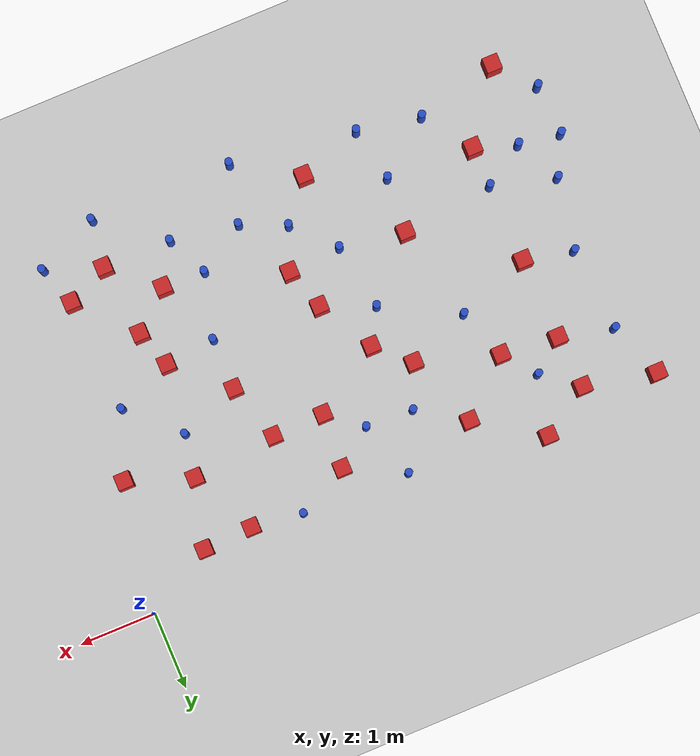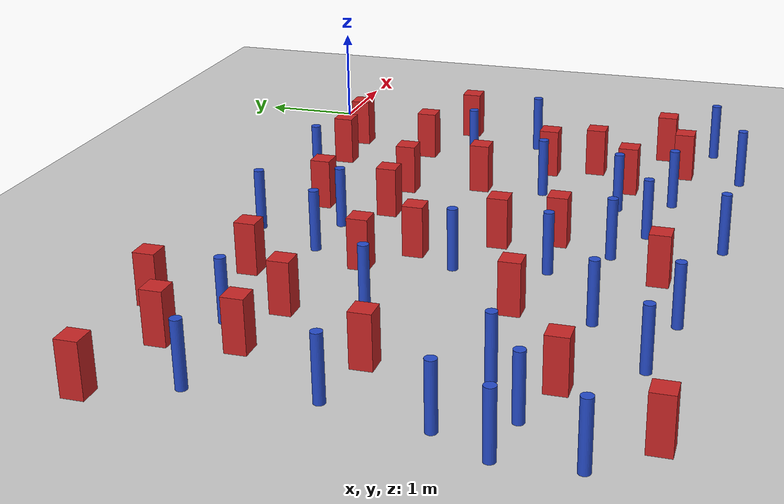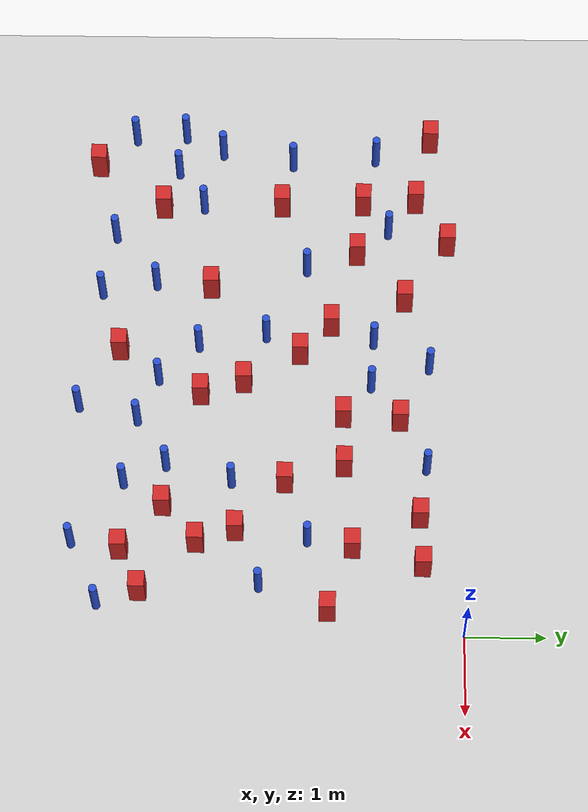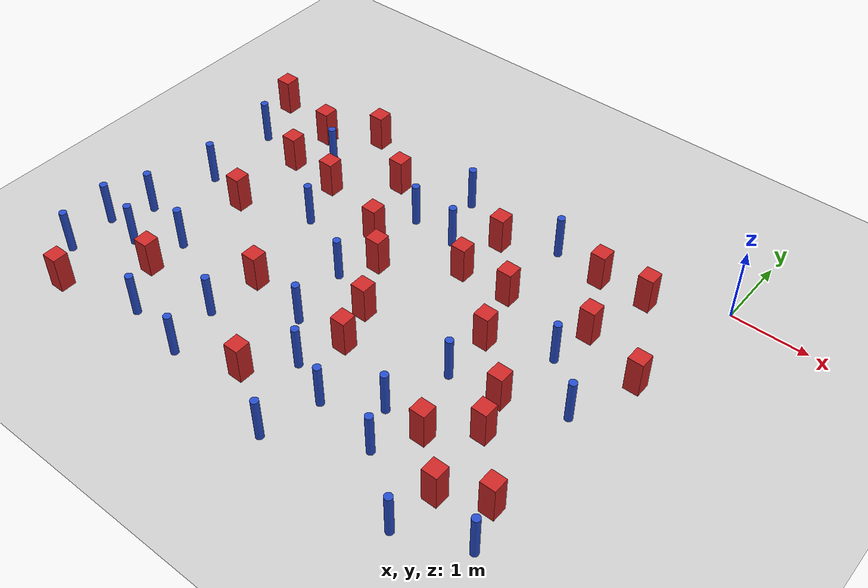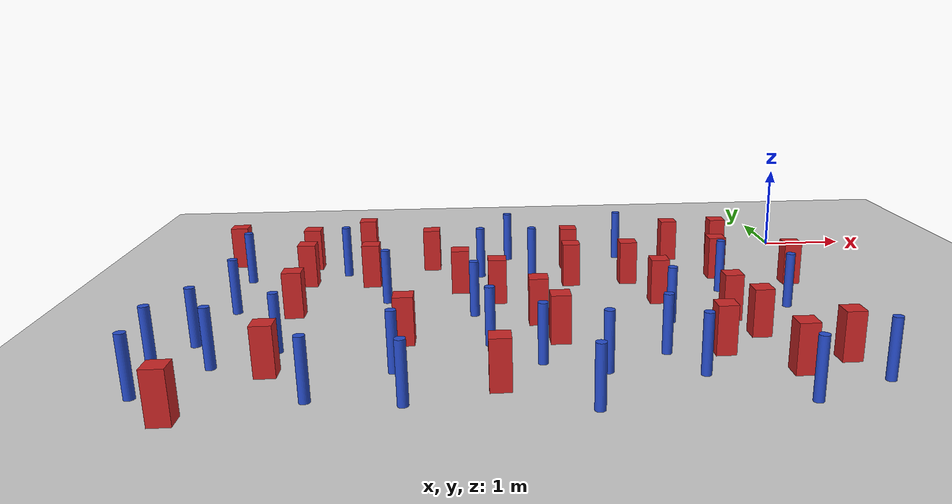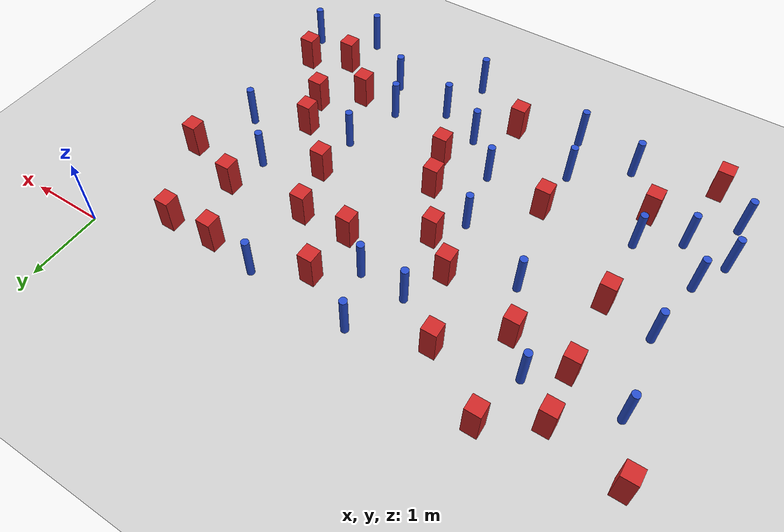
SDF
<sdf version="1.6">
 <world name="default">
  <model name="ground_plane">
   <static>1</static>
   <link name="link">
    <collision name="collision">
     <geometry><plane><normal>0 0 1</normal><size>100 100</size></plane></geometry>
     <surface><friction><ode><mu>100</mu><mu2>50</mu2></ode></friction></surface>
    </collision>
    <visual name="visual">
     <cast_shadows>0</cast_shadows>
     <geometry><plane><normal>0 0 1</normal><size>100 100</size></plane></geometry>
     <material>
      <ambient>1.0 1.0 1.0 1.0</ambient>
      <diffuse>0.8 0.8 0.8 1.0</diffuse>
      <specular>0.01 0.01 0.01 1.000000</specular>
     </material>
    </visual>
   </link>
  </model>
  <model name="square_post_obstacle2">
   <static>true</static>
   <pose>-2.88461139932 -1.47978508925 -4.36207812815e-07 3.75137919937e-06 9.77721102514e-07 2.47381364184e-05</pose>
   <link name="link">
    <pose>0 0 0.25 0 -0 0</pose>
    <inertial>
     <mass>100</mass>
     <inertia>
      <ixx>0.166667</ixx>
      <ixy>0</ixy>
      <ixz>0</ixz>
      <iyy>0.166667</iyy>
      <iyz>0</iyz>
      <izz>0.166667</izz>
     </inertia>
    </inertial>
    <collision name="collision"><geometry><box><size>.2 .2 .5</size></box></geometry></collision>
    <visual name="visual">
     <geometry><box><size>.2 .2 .5</size></box></geometry>
     <material>
      <script><name>Gazebo/Red</name><uri>file://media/materials/scripts/gazebo.material</uri></script>
     </material>
    </visual>
   </link>
  </model>
  <model name="square_post_obstacle6">
   <static>true</static>
   <pose>-2.84316023539 -0.767534176309 -4.36207812815e-07 3.75137919937e-06 9.77721102514e-07 2.47381364184e-05</pose>
   <link name="link">
    <pose>0 0 0.25 0 -0 0</pose>
    <inertial>
     <mass>100</mass>
     <inertia>
      <ixx>0.166667</ixx>
      <ixy>0</ixy>
      <ixz>0</ixz>
      <iyy>0.166667</iyy>
      <iyz>0</iyz>
      <izz>0.166667</izz>
     </inertia>
    </inertial>
    <collision name="collision"><geometry><box><size>.2 .2 .5</size></box></geometry></collision>
    <visual name="visual">
     <geometry><box><size>.2 .2 .5</size></box></geometry>
     <material>
      <script><name>Gazebo/Red</name><uri>file://media/materials/scripts/gazebo.material</uri></script>
     </material>
    </visual>
   </link>
  </model>
  <model name="square_post_obstacle8">
   <static>true</static>
   <pose>-4.70309070849 -3.17879150348 -4.36207812815e-07 3.75137919937e-06 9.77721102514e-07 2.47381364184e-05</pose>
   <link name="link">
    <pose>0 0 0.25 0 -0 0</pose>
    <inertial>
     <mass>100</mass>
     <inertia>
      <ixx>0.166667</ixx>
      <ixy>0</ixy>
      <ixz>0</ixz>
      <iyy>0.166667</iyy>
      <iyz>0</iyz>
      <izz>0.166667</izz>
     </inertia>
    </inertial>
    <collision name="collision"><geometry><box><size>.2 .2 .5</size></box></geometry></collision>
    <visual name="visual">
     <geometry><box><size>.2 .2 .5</size></box></geometry>
     <material>
      <script><name>Gazebo/Red</name><uri>file://media/materials/scripts/gazebo.material</uri></script>
     </material>
    </visual>
   </link>
  </model>
  <model name="pole_obstacle16">
   <static>true</static>
   <pose>-6.55094301523 -2.15541498875 -3.09024884793e-07 -7.19054271912e-07 -2.11315075144e-07 -1.93935509269e-07</pose>
   <link name="link">
    <pose>0 0 0.3 0 -0 0</pose>
    <inertial>
     <mass>1</mass>
     <inertia><ixx>0.145833</ixx><ixy>0</ixy><ixz>0</ixz><iyy>0.145833</iyy><iyz>0</iyz><izz>0.125</izz></inertia>
    </inertial>
    <collision name="collision">
     <geometry><cylinder><radius>0.05</radius><length>.6</length></cylinder></geometry>
    </collision>
    <visual name="visual">
     <geometry><cylinder><radius>0.05</radius><length>.6</length></cylinder></geometry>
     <material>
      <script><name>Gazebo/Blue</name><uri>file://media/materials/scripts/gazebo.material</uri></script>
     </material>
    </visual>
   </link>
  </model>
  <model name="square_post_obstacle26">
   <static>true</static>
   <pose>-3.80524596658 -4.31462572577 -4.36207812815e-07 3.75137919937e-06 9.77721102514e-07 2.47381364184e-05</pose>
   <link name="link">
    <pose>0 0 0.25 0 -0 0</pose>
    <inertial>
     <mass>100</mass>
     <inertia>
      <ixx>0.166667</ixx>
      <ixy>0</ixy>
      <ixz>0</ixz>
      <iyy>0.166667</iyy>
      <iyz>0</iyz>
      <izz>0.166667</izz>
     </inertia>
    </inertial>
    <collision name="collision"><geometry><box><size>.2 .2 .5</size></box></geometry></collision>
    <visual name="visual">
     <geometry><box><size>.2 .2 .5</size></box></geometry>
     <material>
      <script><name>Gazebo/Red</name><uri>file://media/materials/scripts/gazebo.material</uri></script>
     </material>
    </visual>
   </link>
  </model>
  <model name="square_post_obstacle27">
   <static>true</static>
   <pose>-0.881966383445 -0.498350756091 -4.36207812815e-07 3.75137919937e-06 9.77721102514e-07 2.47381364184e-05</pose>
   <link name="link">
    <pose>0 0 0.25 0 -0 0</pose>
    <inertial>
     <mass>100</mass>
     <inertia>
      <ixx>0.166667</ixx>
      <ixy>0</ixy>
      <ixz>0</ixz>
      <iyy>0.166667</iyy>
      <iyz>0</iyz>
      <izz>0.166667</izz>
     </inertia>
    </inertial>
    <collision name="collision"><geometry><box><size>.2 .2 .5</size></box></geometry></collision>
    <visual name="visual">
     <geometry><box><size>.2 .2 .5</size></box></geometry>
     <material>
      <script><name>Gazebo/Red</name><uri>file://media/materials/scripts/gazebo.material</uri></script>
     </material>
    </visual>
   </link>
  </model>
  <model name="pole_obstacle23">
   <static>true</static>
   <pose>-5.44687800554 -4.43225076256 -3.09024884793e-07 -7.19054271911e-07 -2.1131507516e-07 -1.93935509277e-07</pose>
   <link name="link">
    <pose>0 0 0.3 0 -0 0</pose>
    <inertial>
     <mass>1</mass>
     <inertia><ixx>0.145833</ixx><ixy>0</ixy><ixz>0</ixz><iyy>0.145833</iyy><iyz>0</iyz><izz>0.125</izz></inertia>
    </inertial>
    <collision name="collision">
     <geometry><cylinder><radius>0.05</radius><length>.6</length></cylinder></geometry>
    </collision>
    <visual name="visual">
     <geometry><cylinder><radius>0.05</radius><length>.6</length></cylinder></geometry>
     <material>
      <script><name>Gazebo/Blue</name><uri>file://media/materials/scripts/gazebo.material</uri></script>
     </material>
    </visual>
   </link>
  </model>
  <model name="pole_obstacle27">
   <static>true</static>
   <pose>-2.18520740546 -0.436808155744 -3.09024884793e-07 -7.19054271912e-07 -2.1131507512e-07 -1.93935509259e-07</pose>
   <link name="link">
    <pose>0 0 0.3 0 -0 0</pose>
    <inertial>
     <mass>1</mass>
     <inertia><ixx>0.145833</ixx><ixy>0</ixy><ixz>0</ixz><iyy>0.145833</iyy><iyz>0</iyz><izz>0.125</izz></inertia>
    </inertial>
    <collision name="collision">
     <geometry><cylinder><radius>0.05</radius><length>.6</length></cylinder></geometry>
    </collision>
    <visual name="visual">
     <geometry><cylinder><radius>0.05</radius><length>.6</length></cylinder></geometry>
     <material>
      <script><name>Gazebo/Blue</name><uri>file://media/materials/scripts/gazebo.material</uri></script>
     </material>
    </visual>
   </link>
  </model>
  <model name="pole_obstacle28">
   <static>true</static>
   <pose>-1.1608987518 -4.8187572536 -3.09024884793e-07 -7.19054271912e-07 -2.11315075134e-07 -1.93935509265e-07</pose>
   <link name="link">
    <pose>0 0 0.3 0 -0 0</pose>
    <inertial>
     <mass>1</mass>
     <inertia><ixx>0.145833</ixx><ixy>0</ixy><ixz>0</ixz><iyy>0.145833</iyy><iyz>0</iyz><izz>0.125</izz></inertia>
    </inertial>
    <collision name="collision">
     <geometry><cylinder><radius>0.05</radius><length>.6</length></cylinder></geometry>
    </collision>
    <visual name="visual">
     <geometry><cylinder><radius>0.05</radius><length>.6</length></cylinder></geometry>
     <material>
      <script><name>Gazebo/Blue</name><uri>file://media/materials/scripts/gazebo.material</uri></script>
     </material>
    </visual>
   </link>
  </model>
  <model name="square_post_obstacle35">
   <static>true</static>
   <pose>-5.88308273688 -3.82648698249 -4.36207812815e-07 3.75137919937e-06 9.77721102514e-07 2.47381364184e-05</pose>
   <link name="link">
    <pose>0 0 0.25 0 -0 0</pose>
    <inertial>
     <mass>100</mass>
     <inertia>
      <ixx>0.166667</ixx>
      <ixy>0</ixy>
      <ixz>0</ixz>
      <iyy>0.166667</iyy>
      <iyz>0</iyz>
      <izz>0.166667</izz>
     </inertia>
    </inertial>
    <collision name="collision"><geometry><box><size>.2 .2 .5</size></box></geometry></collision>
    <visual name="visual">
     <geometry><box><size>.2 .2 .5</size></box></geometry>
     <material>
      <script><name>Gazebo/Red</name><uri>file://media/materials/scripts/gazebo.material</uri></script>
     </material>
    </visual>
   </link>
  </model>
  <model name="pole_obstacle34">
   <static>true</static>
   <pose>-4.62254869981 -4.57685356982 -3.09024884793e-07 -7.19054271911e-07 -2.1131507516e-07 -1.93935509277e-07</pose>
   <link name="link">
    <pose>0 0 0.3 0 -0 0</pose>
    <inertial>
     <mass>1</mass>
     <inertia><ixx>0.145833</ixx><ixy>0</ixy><ixz>0</ixz><iyy>0.145833</iyy><iyz>0</iyz><izz>0.125</izz></inertia>
    </inertial>
    <collision name="collision">
     <geometry><cylinder><radius>0.05</radius><length>.6</length></cylinder></geometry>
    </collision>
    <visual name="visual">
     <geometry><cylinder><radius>0.05</radius><length>.6</length></cylinder></geometry>
     <material>
      <script><name>Gazebo/Blue</name><uri>file://media/materials/scripts/gazebo.material</uri></script>
     </material>
    </visual>
   </link>
  </model>
  <model name="pole_obstacle45">
   <static>true</static>
   <pose>-3.86966983526 -3.31612171893 -3.09024884793e-07 -7.19054271912e-07 -2.11315075144e-07 -1.93935509271e-07</pose>
   <link name="link">
    <pose>0 0 0.3 0 -0 0</pose>
    <inertial>
     <mass>1</mass>
     <inertia><ixx>0.145833</ixx><ixy>0</ixy><ixz>0</ixz><iyy>0.145833</iyy><iyz>0</iyz><izz>0.125</izz></inertia>
    </inertial>
    <collision name="collision">
     <geometry><cylinder><radius>0.05</radius><length>.6</length></cylinder></geometry>
    </collision>
    <visual name="visual">
     <geometry><cylinder><radius>0.05</radius><length>.6</length></cylinder></geometry>
     <material>
      <script><name>Gazebo/Blue</name><uri>file://media/materials/scripts/gazebo.material</uri></script>
     </material>
    </visual>
   </link>
  </model>
  <model name="square_post_obstacle42">
   <static>true</static>
   <pose>-3.18379272743 -3.2729266285 -4.36207812815e-07 3.75137919937e-06 9.77721102514e-07 2.47381364184e-05</pose>
   <link name="link">
    <pose>0 0 0.25 0 -0 0</pose>
    <inertial>
     <mass>100</mass>
     <inertia>
      <ixx>0.166667</ixx>
      <ixy>0</ixy>
      <ixz>0</ixz>
      <iyy>0.166667</iyy>
      <iyz>0</iyz>
      <izz>0.166667</izz>
     </inertia>
    </inertial>
    <collision name="collision"><geometry><box><size>.2 .2 .5</size></box></geometry></collision>
    <visual name="visual">
     <geometry><box><size>.2 .2 .5</size></box></geometry>
     <material>
      <script><name>Gazebo/Red</name><uri>file://media/materials/scripts/gazebo.material</uri></script>
     </material>
    </visual>
   </link>
  </model>
  <model name="square_post_obstacle46">
   <static>true</static>
   <pose>-0.534580479766 -3.96690956451 -4.36207812815e-07 3.75137919937e-06 9.77721102514e-07 2.47381364184e-05</pose>
   <link name="link">
    <pose>0 0 0.25 0 -0 0</pose>
    <inertial>
     <mass>100</mass>
     <inertia>
      <ixx>0.166667</ixx>
      <ixy>0</ixy>
      <ixz>0</ixz>
      <iyy>0.166667</iyy>
      <iyz>0</iyz>
      <izz>0.166667</izz>
     </inertia>
    </inertial>
    <collision name="collision"><geometry><box><size>.2 .2 .5</size></box></geometry></collision>
    <visual name="visual">
     <geometry><box><size>.2 .2 .5</size></box></geometry>
     <material>
      <script><name>Gazebo/Red</name><uri>file://media/materials/scripts/gazebo.material</uri></script>
     </material>
    </visual>
   </link>
  </model>
  <model name="pole_obstacle46">
   <static>true</static>
   <pose>-4.75628940121 -3.88596519779 -3.09024884793e-07 -7.19054271912e-07 -2.11315075144e-07 -1.93935509269e-07</pose>
   <link name="link">
    <pose>0 0 0.3 0 -0 0</pose>
    <inertial>
     <mass>1</mass>
     <inertia><ixx>0.145833</ixx><ixy>0</ixy><ixz>0</ixz><iyy>0.145833</iyy><iyz>0</iyz><izz>0.125</izz></inertia>
    </inertial>
    <collision name="collision">
     <geometry><cylinder><radius>0.05</radius><length>.6</length></cylinder></geometry>
    </collision>
    <visual name="visual">
     <geometry><cylinder><radius>0.05</radius><length>.6</length></cylinder></geometry>
     <material>
      <script><name>Gazebo/Blue</name><uri>file://media/materials/scripts/gazebo.material</uri></script>
     </material>
    </visual>
   </link>
  </model>
  <model name="square_post_obstacle51">
   <static>true</static>
   <pose>-1.17109834262 -3.28241314627 -4.36207812815e-07 3.75137919937e-06 9.77721102514e-07 2.47381364184e-05</pose>
   <link name="link">
    <pose>0 0 0.25 0 -0 0</pose>
    <inertial>
     <mass>100</mass>
     <inertia>
      <ixx>0.166667</ixx>
      <ixy>0</ixy>
      <ixz>0</ixz>
      <iyy>0.166667</iyy>
      <iyz>0</iyz>
      <izz>0.166667</izz>
     </inertia>
    </inertial>
    <collision name="collision"><geometry><box><size>.2 .2 .5</size></box></geometry></collision>
    <visual name="visual">
     <geometry><box><size>.2 .2 .5</size></box></geometry>
     <material>
      <script><name>Gazebo/Red</name><uri>file://media/materials/scripts/gazebo.material</uri></script>
     </material>
    </visual>
   </link>
  </model>
  <model name="pole_obstacle55">
   <static>true</static>
   <pose>-1.20881541404 -1.91134777488 -3.09024884793e-07 -7.19054271912e-07 -2.1131507513e-07 -1.93935509263e-07</pose>
   <link name="link">
    <pose>0 0 0.3 0 -0 0</pose>
    <inertial>
     <mass>1</mass>
     <inertia><ixx>0.145833</ixx><ixy>0</ixy><ixz>0</ixz><iyy>0.145833</iyy><iyz>0</iyz><izz>0.125</izz></inertia>
    </inertial>
    <collision name="collision">
     <geometry><cylinder><radius>0.05</radius><length>.6</length></cylinder></geometry>
    </collision>
    <visual name="visual">
     <geometry><cylinder><radius>0.05</radius><length>.6</length></cylinder></geometry>
     <material>
      <script><name>Gazebo/Blue</name><uri>file://media/materials/scripts/gazebo.material</uri></script>
     </material>
    </visual>
   </link>
  </model>
  <model name="pole_obstacle57">
   <static>true</static>
   <pose>-6.92636249057 -4.22519619864 -3.09024884793e-07 -7.19054271911e-07 -2.1131507516e-07 -1.93935509277e-07</pose>
   <link name="link">
    <pose>0 0 0.3 0 -0 0</pose>
    <inertial>
     <mass>1</mass>
     <inertia><ixx>0.145833</ixx><ixy>0</ixy><ixz>0</ixz><iyy>0.145833</iyy><iyz>0</iyz><izz>0.125</izz></inertia>
    </inertial>
    <collision name="collision">
     <geometry><cylinder><radius>0.05</radius><length>.6</length></cylinder></geometry>
    </collision>
    <visual name="visual">
     <geometry><cylinder><radius>0.05</radius><length>.6</length></cylinder></geometry>
     <material>
      <script><name>Gazebo/Blue</name><uri>file://media/materials/scripts/gazebo.material</uri></script>
     </material>
    </visual>
   </link>
  </model>
  <model name="pole_obstacle63">
   <static>true</static>
   <pose>-0.360448310892 -4.47291807117 -3.09024884793e-07 -7.19054271912e-07 -2.1131507513e-07 -1.93935509262e-07</pose>
   <link name="link">
    <pose>0 0 0.3 0 -0 0</pose>
    <inertial>
     <mass>1</mass>
     <inertia><ixx>0.145833</ixx><ixy>0</ixy><ixz>0</ixz><iyy>0.145833</iyy><iyz>0</iyz><izz>0.125</izz></inertia>
    </inertial>
    <collision name="collision">
     <geometry><cylinder><radius>0.05</radius><length>.6</length></cylinder></geometry>
    </collision>
    <visual name="visual">
     <geometry><cylinder><radius>0.05</radius><length>.6</length></cylinder></geometry>
     <material>
      <script><name>Gazebo/Blue</name><uri>file://media/materials/scripts/gazebo.material</uri></script>
     </material>
    </visual>
   </link>
  </model>
  <model name="pole_obstacle69">
   <static>true</static>
   <pose>-4.97867674653 -1.95685073066 -3.09024884793e-07 -7.19054271912e-07 -2.11315075115e-07 -1.93935509255e-07</pose>
   <link name="link">
    <pose>0 0 0.3 0 -0 0</pose>
    <inertial>
     <mass>1</mass>
     <inertia><ixx>0.145833</ixx><ixy>0</ixy><ixz>0</ixz><iyy>0.145833</iyy><iyz>0</iyz><izz>0.125</izz></inertia>
    </inertial>
    <collision name="collision">
     <geometry><cylinder><radius>0.05</radius><length>.6</length></cylinder></geometry>
    </collision>
    <visual name="visual">
     <geometry><cylinder><radius>0.05</radius><length>.6</length></cylinder></geometry>
     <material>
      <script><name>Gazebo/Blue</name><uri>file://media/materials/scripts/gazebo.material</uri></script>
     </material>
    </visual>
   </link>
  </model>
  <model name="pole_obstacle84">
   <static>true</static>
   <pose>-4.01639398106 -2.46331447225 -3.09024884793e-07 -7.19054271912e-07 -2.11315075143e-07 -1.93935509269e-07</pose>
   <link name="link">
    <pose>0 0 0.3 0 -0 0</pose>
    <inertial>
     <mass>1</mass>
     <inertia><ixx>0.145833</ixx><ixy>0</ixy><ixz>0</ixz><iyy>0.145833</iyy><iyz>0</iyz><izz>0.125</izz></inertia>
    </inertial>
    <collision name="collision">
     <geometry><cylinder><radius>0.05</radius><length>.6</length></cylinder></geometry>
    </collision>
    <visual name="visual">
     <geometry><cylinder><radius>0.05</radius><length>.6</length></cylinder></geometry>
     <material>
      <script><name>Gazebo/Blue</name><uri>file://media/materials/scripts/gazebo.material</uri></script>
     </material>
    </visual>
   </link>
  </model>
  <model name="pole_obstacle94">
   <static>true</static>
   <pose>-3.39454995424 -3.81226874878 -3.09024884793e-07 -7.19054271912e-07 -2.11315075144e-07 -1.93935509271e-07</pose>
   <link name="link">
    <pose>0 0 0.3 0 -0 0</pose>
    <inertial>
     <mass>1</mass>
     <inertia><ixx>0.145833</ixx><ixy>0</ixy><ixz>0</ixz><iyy>0.145833</iyy><iyz>0</iyz><izz>0.125</izz></inertia>
    </inertial>
    <collision name="collision">
     <geometry><cylinder><radius>0.05</radius><length>.6</length></cylinder></geometry>
    </collision>
    <visual name="visual">
     <geometry><cylinder><radius>0.05</radius><length>.6</length></cylinder></geometry>
     <material>
      <script><name>Gazebo/Blue</name><uri>file://media/materials/scripts/gazebo.material</uri></script>
     </material>
    </visual>
   </link>
  </model>
  <model name="pole_obstacle104">
   <static>true</static>
   <pose>-1.95864846321 -4.20368578143 -3.09024884793e-07 -7.19054271912e-07 -2.1131507513e-07 -1.93935509262e-07</pose>
   <link name="link">
    <pose>0 0 0.3 0 -0 0</pose>
    <inertial>
     <mass>1</mass>
     <inertia><ixx>0.145833</ixx><ixy>0</ixy><ixz>0</ixz><iyy>0.145833</iyy><iyz>0</iyz><izz>0.125</izz></inertia>
    </inertial>
    <collision name="collision">
     <geometry><cylinder><radius>0.05</radius><length>.6</length></cylinder></geometry>
    </collision>
    <visual name="visual">
     <geometry><cylinder><radius>0.05</radius><length>.6</length></cylinder></geometry>
     <material>
      <script><name>Gazebo/Blue</name><uri>file://media/materials/scripts/gazebo.material</uri></script>
     </material>
    </visual>
   </link>
  </model>
  <model name="square_post_obstacle92">
   <static>true</static>
   <pose>-5.91472589866 -2.28969219752 -4.36207812815e-07 3.75137919937e-06 9.77721102514e-07 2.47381364184e-05</pose>
   <link name="link">
    <pose>0 0 0.25 0 -0 0</pose>
    <inertial>
     <mass>100</mass>
     <inertia>
      <ixx>0.166667</ixx>
      <ixy>0</ixy>
      <ixz>0</ixz>
      <iyy>0.166667</iyy>
      <iyz>0</iyz>
      <izz>0.166667</izz>
     </inertia>
    </inertial>
    <collision name="collision"><geometry><box><size>.2 .2 .5</size></box></geometry></collision>
    <visual name="visual">
     <geometry><box><size>.2 .2 .5</size></box></geometry>
     <material>
      <script><name>Gazebo/Red</name><uri>file://media/materials/scripts/gazebo.material</uri></script>
     </material>
    </visual>
   </link>
  </model>
  <model name="square_post_obstacle93">
   <static>true</static>
   <pose>-4.53040163279 -0.705103822114 -4.36207812815e-07 3.75137919937e-06 9.77721102514e-07 2.47381364184e-05</pose>
   <link name="link">
    <pose>0 0 0.25 0 -0 0</pose>
    <inertial>
     <mass>100</mass>
     <inertia>
      <ixx>0.166667</ixx>
      <ixy>0</ixy>
      <ixz>0</ixz>
      <iyy>0.166667</iyy>
      <iyz>0</iyz>
      <izz>0.166667</izz>
     </inertia>
    </inertial>
    <collision name="collision"><geometry><box><size>.2 .2 .5</size></box></geometry></collision>
    <visual name="visual">
     <geometry><box><size>.2 .2 .5</size></box></geometry>
     <material>
      <script><name>Gazebo/Red</name><uri>file://media/materials/scripts/gazebo.material</uri></script>
     </material>
    </visual>
   </link>
  </model>
  <model name="square_post_obstacle98">
   <static>true</static>
   <pose>-0.288676449657 -1.65964958947 -4.36207812815e-07 3.75137919937e-06 9.77721102514e-07 2.47381364184e-05</pose>
   <link name="link">
    <pose>0 0 0.25 0 -0 0</pose>
    <inertial>
     <mass>100</mass>
     <inertia>
      <ixx>0.166667</ixx>
      <ixy>0</ixy>
      <ixz>0</ixz>
      <iyy>0.166667</iyy>
      <iyz>0</iyz>
      <izz>0.166667</izz>
     </inertia>
    </inertial>
    <collision name="collision"><geometry><box><size>.2 .2 .5</size></box></geometry></collision>
    <visual name="visual">
     <geometry><box><size>.2 .2 .5</size></box></geometry>
     <material>
      <script><name>Gazebo/Red</name><uri>file://media/materials/scripts/gazebo.material</uri></script>
     </material>
    </visual>
   </link>
  </model>
  <model name="pole_obstacle114">
   <static>true</static>
   <pose>-5.89491675135 -3.30587381996 -3.09024884793e-07 -7.19054271912e-07 -2.11315075144e-07 -1.93935509269e-07</pose>
   <link name="link">
    <pose>0 0 0.3 0 -0 0</pose>
    <inertial>
     <mass>1</mass>
     <inertia><ixx>0.145833</ixx><ixy>0</ixy><ixz>0</ixz><iyy>0.145833</iyy><iyz>0</iyz><izz>0.125</izz></inertia>
    </inertial>
    <collision name="collision">
     <geometry><cylinder><radius>0.05</radius><length>.6</length></cylinder></geometry>
    </collision>
    <visual name="visual">
     <geometry><cylinder><radius>0.05</radius><length>.6</length></cylinder></geometry>
     <material>
      <script><name>Gazebo/Blue</name><uri>file://media/materials/scripts/gazebo.material</uri></script>
     </material>
    </visual>
   </link>
  </model>
  <model name="square_post_obstacle104">
   <static>true</static>
   <pose>-1.33190130096 -2.80029335036 -4.36207812815e-07 3.75137919937e-06 9.77721102514e-07 2.47381364184e-05</pose>
   <link name="link">
    <pose>0 0 0.25 0 -0 0</pose>
    <inertial>
     <mass>100</mass>
     <inertia>
      <ixx>0.166667</ixx>
      <ixy>0</ixy>
      <ixz>0</ixz>
      <iyy>0.166667</iyy>
      <iyz>0</iyz>
      <izz>0.166667</izz>
     </inertia>
    </inertial>
    <collision name="collision"><geometry><box><size>.2 .2 .5</size></box></geometry></collision>
    <visual name="visual">
     <geometry><box><size>.2 .2 .5</size></box></geometry>
     <material>
      <script><name>Gazebo/Red</name><uri>file://media/materials/scripts/gazebo.material</uri></script>
     </material>
    </visual>
   </link>
  </model>
  <model name="pole_obstacle124">
   <static>true</static>
   <pose>-6.4221404115 -3.64556877871 -3.09024884793e-07 -7.19054271912e-07 -2.11315075144e-07 -1.93935509269e-07</pose>
   <link name="link">
    <pose>0 0 0.3 0 -0 0</pose>
    <inertial>
     <mass>1</mass>
     <inertia><ixx>0.145833</ixx><ixy>0</ixy><ixz>0</ixz><iyy>0.145833</iyy><iyz>0</iyz><izz>0.125</izz></inertia>
    </inertial>
    <collision name="collision">
     <geometry><cylinder><radius>0.05</radius><length>.6</length></cylinder></geometry>
    </collision>
    <visual name="visual">
     <geometry><cylinder><radius>0.05</radius><length>.6</length></cylinder></geometry>
     <material>
      <script><name>Gazebo/Blue</name><uri>file://media/materials/scripts/gazebo.material</uri></script>
     </material>
    </visual>
   </link>
  </model>
  <model name="pole_obstacle131">
   <static>true</static>
   <pose>-3.31840604903 -1.12851653719 -3.09024884793e-07 -7.19054271912e-07 -2.11315075122e-07 -1.93935509259e-07</pose>
   <link name="link">
    <pose>0 0 0.3 0 -0 0</pose>
    <inertial>
     <mass>1</mass>
     <inertia><ixx>0.145833</ixx><ixy>0</ixy><ixz>0</ixz><iyy>0.145833</iyy><iyz>0</iyz><izz>0.125</izz></inertia>
    </inertial>
    <collision name="collision">
     <geometry><cylinder><radius>0.05</radius><length>.6</length></cylinder></geometry>
    </collision>
    <visual name="visual">
     <geometry><cylinder><radius>0.05</radius><length>.6</length></cylinder></geometry>
     <material>
      <script><name>Gazebo/Blue</name><uri>file://media/materials/scripts/gazebo.material</uri></script>
     </material>
    </visual>
   </link>
  </model>
  <model name="square_post_obstacle117">
   <static>true</static>
   <pose>-6.50341501556 -4.68874881 -4.36207812815e-07 3.75137919937e-06 9.77721102514e-07 2.47381364184e-05</pose>
   <link name="link">
    <pose>0 0 0.25 0 -0 0</pose>
    <inertial>
     <mass>100</mass>
     <inertia>
      <ixx>0.166667</ixx>
      <ixy>0</ixy>
      <ixz>0</ixz>
      <iyy>0.166667</iyy>
      <iyz>0</iyz>
      <izz>0.166667</izz>
     </inertia>
    </inertial>
    <collision name="collision"><geometry><box><size>.2 .2 .5</size></box></geometry></collision>
    <visual name="visual">
     <geometry><box><size>.2 .2 .5</size></box></geometry>
     <material>
      <script><name>Gazebo/Red</name><uri>file://media/materials/scripts/gazebo.material</uri></script>
     </material>
    </visual>
   </link>
  </model>
  <model name="square_post_obstacle121">
   <static>true</static>
   <pose>-4.17175961003 -1.63776358415 -4.36207812815e-07 3.75137919937e-06 9.77721102514e-07 2.47381364184e-05</pose>
   <link name="link">
    <pose>0 0 0.25 0 -0 0</pose>
    <inertial>
     <mass>100</mass>
     <inertia>
      <ixx>0.166667</ixx>
      <ixy>0</ixy>
      <ixz>0</ixz>
      <iyy>0.166667</iyy>
      <iyz>0</iyz>
      <izz>0.166667</izz>
     </inertia>
    </inertial>
    <collision name="collision"><geometry><box><size>.2 .2 .5</size></box></geometry></collision>
    <visual name="visual">
     <geometry><box><size>.2 .2 .5</size></box></geometry>
     <material>
      <script><name>Gazebo/Red</name><uri>file://media/materials/scripts/gazebo.material</uri></script>
     </material>
    </visual>
   </link>
  </model>
  <model name="square_post_obstacle129">
   <static>true</static>
   <pose>-5.98778844407 -0.555486534503 -4.36207812815e-07 3.75137919937e-06 9.77721102514e-07 2.47381364184e-05</pose>
   <link name="link">
    <pose>0 0 0.25 0 -0 0</pose>
    <inertial>
     <mass>100</mass>
     <inertia>
      <ixx>0.166667</ixx>
      <ixy>0</ixy>
      <ixz>0</ixz>
      <iyy>0.166667</iyy>
      <iyz>0</iyz>
      <izz>0.166667</izz>
     </inertia>
    </inertial>
    <collision name="collision"><geometry><box><size>.2 .2 .5</size></box></geometry></collision>
    <visual name="visual">
     <geometry><box><size>.2 .2 .5</size></box></geometry>
     <material>
      <script><name>Gazebo/Red</name><uri>file://media/materials/scripts/gazebo.material</uri></script>
     </material>
    </visual>
   </link>
  </model>
  <model name="square_post_obstacle131">
   <static>true</static>
   <pose>-5.94232293121 -1.23741934087 -4.36207812815e-07 3.75137919937e-06 9.77721102514e-07 2.47381364184e-05</pose>
   <link name="link">
    <pose>0 0 0.25 0 -0 0</pose>
    <inertial>
     <mass>100</mass>
     <inertia>
      <ixx>0.166667</ixx>
      <ixy>0</ixy>
      <ixz>0</ixz>
      <iyy>0.166667</iyy>
      <iyz>0</iyz>
      <izz>0.166667</izz>
     </inertia>
    </inertial>
    <collision name="collision"><geometry><box><size>.2 .2 .5</size></box></geometry></collision>
    <visual name="visual">
     <geometry><box><size>.2 .2 .5</size></box></geometry>
     <material>
      <script><name>Gazebo/Red</name><uri>file://media/materials/scripts/gazebo.material</uri></script>
     </material>
    </visual>
   </link>
  </model>
  <model name="square_post_obstacle134">
   <static>true</static>
   <pose>-1.0718532408 -4.21662103134 -4.36207812815e-07 3.75137919937e-06 9.77721102514e-07 2.47381364184e-05</pose>
   <link name="link">
    <pose>0 0 0.25 0 -0 0</pose>
    <inertial>
     <mass>100</mass>
     <inertia>
      <ixx>0.166667</ixx>
      <ixy>0</ixy>
      <ixz>0</ixz>
      <iyy>0.166667</iyy>
      <iyz>0</iyz>
      <izz>0.166667</izz>
     </inertia>
    </inertial>
    <collision name="collision"><geometry><box><size>.2 .2 .5</size></box></geometry></collision>
    <visual name="visual">
     <geometry><box><size>.2 .2 .5</size></box></geometry>
     <material>
      <script><name>Gazebo/Red</name><uri>file://media/materials/scripts/gazebo.material</uri></script>
     </material>
    </visual>
   </link>
  </model>
  <model name="pole_obstacle151">
   <static>true</static>
   <pose>-0.602752096691 -2.50144756552 -3.09024884793e-07 -7.19054271912e-07 -2.11315075129e-07 -1.93935509263e-07</pose>
   <link name="link">
    <pose>0 0 0.3 0 -0 0</pose>
    <inertial>
     <mass>1</mass>
     <inertia><ixx>0.145833</ixx><ixy>0</ixy><ixz>0</ixz><iyy>0.145833</iyy><iyz>0</iyz><izz>0.125</izz></inertia>
    </inertial>
    <collision name="collision">
     <geometry><cylinder><radius>0.05</radius><length>.6</length></cylinder></geometry>
    </collision>
    <visual name="visual">
     <geometry><cylinder><radius>0.05</radius><length>.6</length></cylinder></geometry>
     <material>
      <script><name>Gazebo/Blue</name><uri>file://media/materials/scripts/gazebo.material</uri></script>
     </material>
    </visual>
   </link>
  </model>
  <model name="square_post_obstacle151">
   <static>true</static>
   <pose>-5.3578138907 -0.15406625878 -4.36207812815e-07 3.75137919937e-06 9.77721102514e-07 2.47381364184e-05</pose>
   <link name="link">
    <pose>0 0 0.25 0 -0 0</pose>
    <inertial>
     <mass>100</mass>
     <inertia>
      <ixx>0.166667</ixx>
      <ixy>0</ixy>
      <ixz>0</ixz>
      <iyy>0.166667</iyy>
      <iyz>0</iyz>
      <izz>0.166667</izz>
     </inertia>
    </inertial>
    <collision name="collision"><geometry><box><size>.2 .2 .5</size></box></geometry></collision>
    <visual name="visual">
     <geometry><box><size>.2 .2 .5</size></box></geometry>
     <material>
      <script><name>Gazebo/Red</name><uri>file://media/materials/scripts/gazebo.material</uri></script>
     </material>
    </visual>
   </link>
  </model>
  <model name="pole_obstacle160">
   <static>true</static>
   <pose>-6.71574511025 -3.07498327898 -3.09024884793e-07 -7.19054271912e-07 -2.11315075144e-07 -1.93935509269e-07</pose>
   <link name="link">
    <pose>0 0 0.3 0 -0 0</pose>
    <inertial>
     <mass>1</mass>
     <inertia><ixx>0.145833</ixx><ixy>0</ixy><ixz>0</ixz><iyy>0.145833</iyy><iyz>0</iyz><izz>0.125</izz></inertia>
    </inertial>
    <collision name="collision">
     <geometry><cylinder><radius>0.05</radius><length>.6</length></cylinder></geometry>
    </collision>
    <visual name="visual">
     <geometry><cylinder><radius>0.05</radius><length>.6</length></cylinder></geometry>
     <material>
      <script><name>Gazebo/Blue</name><uri>file://media/materials/scripts/gazebo.material</uri></script>
     </material>
    </visual>
   </link>
  </model>
  <model name="square_post_obstacle154">
   <static>true</static>
   <pose>-2.20962666403 -1.46596304959 -4.36207812815e-07 3.75137919937e-06 9.77721102514e-07 2.47381364184e-05</pose>
   <link name="link">
    <pose>0 0 0.25 0 -0 0</pose>
    <inertial>
     <mass>100</mass>
     <inertia>
      <ixx>0.166667</ixx>
      <ixy>0</ixy>
      <ixz>0</ixz>
      <iyy>0.166667</iyy>
      <iyz>0</iyz>
      <izz>0.166667</izz>
     </inertia>
    </inertial>
    <collision name="collision"><geometry><box><size>.2 .2 .5</size></box></geometry></collision>
    <visual name="visual">
     <geometry><box><size>.2 .2 .5</size></box></geometry>
     <material>
      <script><name>Gazebo/Red</name><uri>file://media/materials/scripts/gazebo.material</uri></script>
     </material>
    </visual>
   </link>
  </model>
  <model name="square_post_obstacle156">
   <static>true</static>
   <pose>-1.11493385675 -1.36118279005 -4.36207812815e-07 3.75137919937e-06 9.77721102514e-07 2.47381364184e-05</pose>
   <link name="link">
    <pose>0 0 0.25 0 -0 0</pose>
    <inertial>
     <mass>100</mass>
     <inertia>
      <ixx>0.166667</ixx>
      <ixy>0</ixy>
      <ixz>0</ixz>
      <iyy>0.166667</iyy>
      <iyz>0</iyz>
      <izz>0.166667</izz>
     </inertia>
    </inertial>
    <collision name="collision"><geometry><box><size>.2 .2 .5</size></box></geometry></collision>
    <visual name="visual">
     <geometry><box><size>.2 .2 .5</size></box></geometry>
     <material>
      <script><name>Gazebo/Red</name><uri>file://media/materials/scripts/gazebo.material</uri></script>
     </material>
    </visual>
   </link>
  </model>
  <model name="square_post_obstacle157">
   <static>true</static>
   <pose>-3.35839116016 -2.73605303039 -4.36207812815e-07 3.75137919937e-06 9.77721102514e-07 2.47381364184e-05</pose>
   <link name="link">
    <pose>0 0 0.25 0 -0 0</pose>
    <inertial>
     <mass>100</mass>
     <inertia>
      <ixx>0.166667</ixx>
      <ixy>0</ixy>
      <ixz>0</ixz>
      <iyy>0.166667</iyy>
      <iyz>0</iyz>
      <izz>0.166667</izz>
     </inertia>
    </inertial>
    <collision name="collision"><geometry><box><size>.2 .2 .5</size></box></geometry></collision>
    <visual name="visual">
     <geometry><box><size>.2 .2 .5</size></box></geometry>
     <material>
      <script><name>Gazebo/Red</name><uri>file://media/materials/scripts/gazebo.material</uri></script>
     </material>
    </visual>
   </link>
  </model>
  <model name="pole_obstacle165">
   <static>true</static>
   <pose>-2.82310487971 -4.06388314548 -3.09024884793e-07 -7.19054271912e-07 -2.11315075134e-07 -1.93935509266e-07</pose>
   <link name="link">
    <pose>0 0 0.3 0 -0 0</pose>
    <inertial>
     <mass>1</mass>
     <inertia><ixx>0.145833</ixx><ixy>0</ixy><ixz>0</ixz><iyy>0.145833</iyy><iyz>0</iyz><izz>0.125</izz></inertia>
    </inertial>
    <collision name="collision">
     <geometry><cylinder><radius>0.05</radius><length>.6</length></cylinder></geometry>
    </collision>
    <visual name="visual">
     <geometry><cylinder><radius>0.05</radius><length>.6</length></cylinder></geometry>
     <material>
      <script><name>Gazebo/Blue</name><uri>file://media/materials/scripts/gazebo.material</uri></script>
     </material>
    </visual>
   </link>
  </model>
  <model name="pole_obstacle169">
   <static>true</static>
   <pose>-3.0068101697 -4.80757924388 -3.09024884793e-07 -7.19054271912e-07 -2.11315075134e-07 -1.93935509266e-07</pose>
   <link name="link">
    <pose>0 0 0.3 0 -0 0</pose>
    <inertial>
     <mass>1</mass>
     <inertia><ixx>0.145833</ixx><ixy>0</ixy><ixz>0</ixz><iyy>0.145833</iyy><iyz>0</iyz><izz>0.125</izz></inertia>
    </inertial>
    <collision name="collision">
     <geometry><cylinder><radius>0.05</radius><length>.6</length></cylinder></geometry>
    </collision>
    <visual name="visual">
     <geometry><cylinder><radius>0.05</radius><length>.6</length></cylinder></geometry>
     <material>
      <script><name>Gazebo/Blue</name><uri>file://media/materials/scripts/gazebo.material</uri></script>
     </material>
    </visual>
   </link>
  </model>
  <model name="pole_obstacle171">
   <static>true</static>
   <pose>-2.20440829673 -3.68194253087 -3.09024884793e-07 -7.19054271912e-07 -2.11315075144e-07 -1.93935509271e-07</pose>
   <link name="link">
    <pose>0 0 0.3 0 -0 0</pose>
    <inertial>
     <mass>1</mass>
     <inertia><ixx>0.145833</ixx><ixy>0</ixy><ixz>0</ixz><iyy>0.145833</iyy><iyz>0</iyz><izz>0.125</izz></inertia>
    </inertial>
    <collision name="collision">
     <geometry><cylinder><radius>0.05</radius><length>.6</length></cylinder></geometry>
    </collision>
    <visual name="visual">
     <geometry><cylinder><radius>0.05</radius><length>.6</length></cylinder></geometry>
     <material>
      <script><name>Gazebo/Blue</name><uri>file://media/materials/scripts/gazebo.material</uri></script>
     </material>
    </visual>
   </link>
  </model>
  <model name="pole_obstacle174">
   <static>true</static>
   <pose>-3.93384989449 -1.09807291278 -3.09024884793e-07 -7.19054271912e-07 -2.11315075122e-07 -1.93935509259e-07</pose>
   <link name="link">
    <pose>0 0 0.3 0 -0 0</pose>
    <inertial>
     <mass>1</mass>
     <inertia><ixx>0.145833</ixx><ixy>0</ixy><ixz>0</ixz><iyy>0.145833</iyy><iyz>0</iyz><izz>0.125</izz></inertia>
    </inertial>
    <collision name="collision">
     <geometry><cylinder><radius>0.05</radius><length>.6</length></cylinder></geometry>
    </collision>
    <visual name="visual">
     <geometry><cylinder><radius>0.05</radius><length>.6</length></cylinder></geometry>
     <material>
      <script><name>Gazebo/Blue</name><uri>file://media/materials/scripts/gazebo.material</uri></script>
     </material>
    </visual>
   </link>
  </model>
  <model name="square_post_obstacle171">
   <static>true</static>
   <pose>-1.52391118647 -0.525065655109 -4.36207812815e-07 3.75137919937e-06 9.77721102514e-07 2.47381364184e-05</pose>
   <link name="link">
    <pose>0 0 0.25 0 -0 0</pose>
    <inertial>
     <mass>100</mass>
     <inertia>
      <ixx>0.166667</ixx>
      <ixy>0</ixy>
      <ixz>0</ixz>
      <iyy>0.166667</iyy>
      <iyz>0</iyz>
      <izz>0.166667</izz>
     </inertia>
    </inertial>
    <collision name="collision"><geometry><box><size>.2 .2 .5</size></box></geometry></collision>
    <visual name="visual">
     <geometry><box><size>.2 .2 .5</size></box></geometry>
     <material>
      <script><name>Gazebo/Red</name><uri>file://media/materials/scripts/gazebo.material</uri></script>
     </material>
    </visual>
   </link>
  </model>
  <model name="square_post_obstacle178">
   <static>true</static>
   <pose>-6.90882732805 -0.35811995415 -4.36207812815e-07 3.75137919937e-06 9.77721102514e-07 2.47381364184e-05</pose>
   <link name="link">
    <pose>0 0 0.25 0 -0 0</pose>
    <inertial>
     <mass>100</mass>
     <inertia>
      <ixx>0.166667</ixx>
      <ixy>0</ixy>
      <ixz>0</ixz>
      <iyy>0.166667</iyy>
      <iyz>0</iyz>
      <izz>0.166667</izz>
     </inertia>
    </inertial>
    <collision name="collision"><geometry><box><size>.2 .2 .5</size></box></geometry></collision>
    <visual name="visual">
     <geometry><box><size>.2 .2 .5</size></box></geometry>
     <material>
      <script><name>Gazebo/Red</name><uri>file://media/materials/scripts/gazebo.material</uri></script>
     </material>
    </visual>
   </link>
  </model>
  <model name="square_post_obstacle187">
   <static>true</static>
   <pose>-1.98363409946 -2.19832083499 -4.36207812815e-07 3.75137919937e-06 9.77721102514e-07 2.47381364184e-05</pose>
   <link name="link">
    <pose>0 0 0.25 0 -0 0</pose>
    <inertial>
     <mass>100</mass>
     <inertia>
      <ixx>0.166667</ixx>
      <ixy>0</ixy>
      <ixz>0</ixz>
      <iyy>0.166667</iyy>
      <iyz>0</iyz>
      <izz>0.166667</izz>
     </inertia>
    </inertial>
    <collision name="collision"><geometry><box><size>.2 .2 .5</size></box></geometry></collision>
    <visual name="visual">
     <geometry><box><size>.2 .2 .5</size></box></geometry>
     <material>
      <script><name>Gazebo/Red</name><uri>file://media/materials/scripts/gazebo.material</uri></script>
     </material>
    </visual>
   </link>
  </model>
  <model name="square_post_obstacle189">
   <static>true</static>
   <pose>-3.76259549692 -2.03068798355 -4.36207812815e-07 3.75137919937e-06 9.77721102514e-07 2.47381364184e-05</pose>
   <link name="link">
    <pose>0 0 0.25 0 -0 0</pose>
    <inertial>
     <mass>100</mass>
     <inertia>
      <ixx>0.166667</ixx>
      <ixy>0</ixy>
      <ixz>0</ixz>
      <iyy>0.166667</iyy>
      <iyz>0</iyz>
      <izz>0.166667</izz>
     </inertia>
    </inertial>
    <collision name="collision"><geometry><box><size>.2 .2 .5</size></box></geometry></collision>
    <visual name="visual">
     <geometry><box><size>.2 .2 .5</size></box></geometry>
     <material>
      <script><name>Gazebo/Red</name><uri>file://media/materials/scripts/gazebo.material</uri></script>
     </material>
    </visual>
   </link>
  </model>
  <model name="square_post_obstacle190">
   <static>true</static>
   <pose>-1.65776980792 -3.70512947562 -4.36207812815e-07 3.75137919937e-06 9.77721102514e-07 2.47381364184e-05</pose>
   <link name="link">
    <pose>0 0 0.25 0 -0 0</pose>
    <inertial>
     <mass>100</mass>
     <inertia>
      <ixx>0.166667</ixx>
      <ixy>0</ixy>
      <ixz>0</ixz>
      <iyy>0.166667</iyy>
      <iyz>0</iyz>
      <izz>0.166667</izz>
     </inertia>
    </inertial>
    <collision name="collision"><geometry><box><size>.2 .2 .5</size></box></geometry></collision>
    <visual name="visual">
     <geometry><box><size>.2 .2 .5</size></box></geometry>
     <material>
      <script><name>Gazebo/Red</name><uri>file://media/materials/scripts/gazebo.material</uri></script>
     </material>
    </visual>
   </link>
  </model>
  <model name="pole_obstacle199">
   <static>true</static>
   <pose>-6.96509465366 -3.56846773045 -3.09024884793e-07 -7.19054271912e-07 -2.11315075144e-07 -1.93935509269e-07</pose>
   <link name="link">
    <pose>0 0 0.3 0 -0 0</pose>
    <inertial>
     <mass>1</mass>
     <inertia><ixx>0.145833</ixx><ixy>0</ixy><ixz>0</ixz><iyy>0.145833</iyy><iyz>0</iyz><izz>0.125</izz></inertia>
    </inertial>
    <collision name="collision">
     <geometry><cylinder><radius>0.05</radius><length>.6</length></cylinder></geometry>
    </collision>
    <visual name="visual">
     <geometry><cylinder><radius>0.05</radius><length>.6</length></cylinder></geometry>
     <material>
      <script><name>Gazebo/Blue</name><uri>file://media/materials/scripts/gazebo.material</uri></script>
     </material>
    </visual>
   </link>
  </model>
  <model name="square_post_obstacle191">
   <static>true</static>
   <pose>-5.20633391082 -1.3125520943 -4.36207812815e-07 3.75137919937e-06 9.77721102514e-07 2.47381364184e-05</pose>
   <link name="link">
    <pose>0 0 0.25 0 -0 0</pose>
    <inertial>
     <mass>100</mass>
     <inertia>
      <ixx>0.166667</ixx>
      <ixy>0</ixy>
      <ixz>0</ixz>
      <iyy>0.166667</iyy>
      <iyz>0</iyz>
      <izz>0.166667</izz>
     </inertia>
    </inertial>
    <collision name="collision"><geometry><box><size>.2 .2 .5</size></box></geometry></collision>
    <visual name="visual">
     <geometry><box><size>.2 .2 .5</size></box></geometry>
     <material>
      <script><name>Gazebo/Red</name><uri>file://media/materials/scripts/gazebo.material</uri></script>
     </material>
    </visual>
   </link>
  </model>
  <model name="pole_obstacle205">
   <static>true</static>
   <pose>-1.98178516477 -2.86038426431 -3.09024884793e-07 -7.19054271912e-07 -2.11315075118e-07 -1.93935509257e-07</pose>
   <link name="link">
    <pose>0 0 0.3 0 -0 0</pose>
    <inertial>
     <mass>1</mass>
     <inertia><ixx>0.145833</ixx><ixy>0</ixy><ixz>0</ixz><iyy>0.145833</iyy><iyz>0</iyz><izz>0.125</izz></inertia>
    </inertial>
    <collision name="collision">
     <geometry><cylinder><radius>0.05</radius><length>.6</length></cylinder></geometry>
    </collision>
    <visual name="visual">
     <geometry><cylinder><radius>0.05</radius><length>.6</length></cylinder></geometry>
     <material>
      <script><name>Gazebo/Blue</name><uri>file://media/materials/scripts/gazebo.material</uri></script>
     </material>
    </visual>
   </link>
  </model>
  <model name="pole_obstacle206">
   <static>true</static>
   <pose>-5.53866711775 -0.909063068307 -3.09024884793e-07 -7.19054271912e-07 -2.11315075134e-07 -1.93935509265e-07</pose>
   <link name="link">
    <pose>0 0 0.3 0 -0 0</pose>
    <inertial>
     <mass>1</mass>
     <inertia><ixx>0.145833</ixx><ixy>0</ixy><ixz>0</ixz><iyy>0.145833</iyy><iyz>0</iyz><izz>0.125</izz></inertia>
    </inertial>
    <collision name="collision">
     <geometry><cylinder><radius>0.05</radius><length>.6</length></cylinder></geometry>
    </collision>
    <visual name="visual">
     <geometry><cylinder><radius>0.05</radius><length>.6</length></cylinder></geometry>
     <material>
      <script><name>Gazebo/Blue</name><uri>file://media/materials/scripts/gazebo.material</uri></script>
     </material>
    </visual>
   </link>
  </model>
  <model name="pole_obstacle207">
   <static>true</static>
   <pose>-3.58106527667 -0.393501062079 -3.09024884793e-07 -7.19054271912e-07 -2.1131507512e-07 -1.93935509259e-07</pose>
   <link name="link">
    <pose>0 0 0.3 0 -0 0</pose>
    <inertial>
     <mass>1</mass>
     <inertia><ixx>0.145833</ixx><ixy>0</ixy><ixz>0</ixz><iyy>0.145833</iyy><iyz>0</iyz><izz>0.125</izz></inertia>
    </inertial>
    <collision name="collision">
     <geometry><cylinder><radius>0.05</radius><length>.6</length></cylinder></geometry>
    </collision>
    <visual name="visual">
     <geometry><cylinder><radius>0.05</radius><length>.6</length></cylinder></geometry>
     <material>
      <script><name>Gazebo/Blue</name><uri>file://media/materials/scripts/gazebo.material</uri></script>
     </material>
    </visual>
   </link>
  </model>
  <model name="pole_obstacle214">
   <static>true</static>
   <pose>-6.63849308557 -1.07205511417 -3.09024884793e-07 -7.19054271912e-07 -2.11315075124e-07 -1.93935509261e-07</pose>
   <link name="link">
    <pose>0 0 0.3 0 -0 0</pose>
    <inertial>
     <mass>1</mass>
     <inertia><ixx>0.145833</ixx><ixy>0</ixy><ixz>0</ixz><iyy>0.145833</iyy><iyz>0</iyz><izz>0.125</izz></inertia>
    </inertial>
    <collision name="collision">
     <geometry><cylinder><radius>0.05</radius><length>.6</length></cylinder></geometry>
    </collision>
    <visual name="visual">
     <geometry><cylinder><radius>0.05</radius><length>.6</length></cylinder></geometry>
     <material>
      <script><name>Gazebo/Blue</name><uri>file://media/materials/scripts/gazebo.material</uri></script>
     </material>
    </visual>
   </link>
  </model>
 </world>
</sdf>
